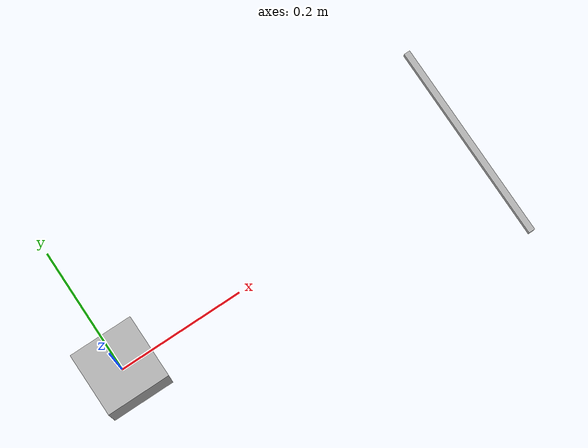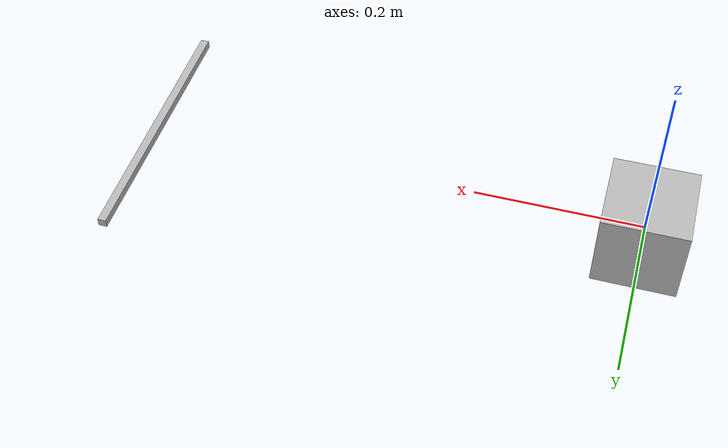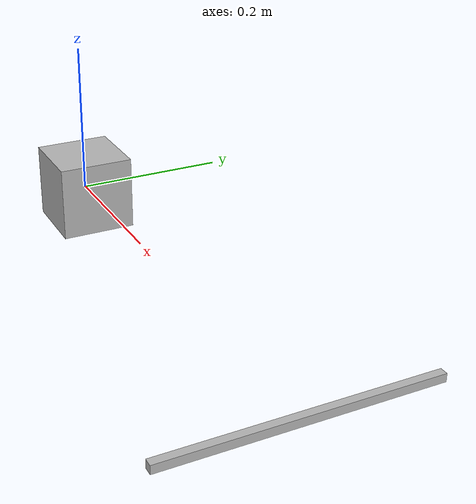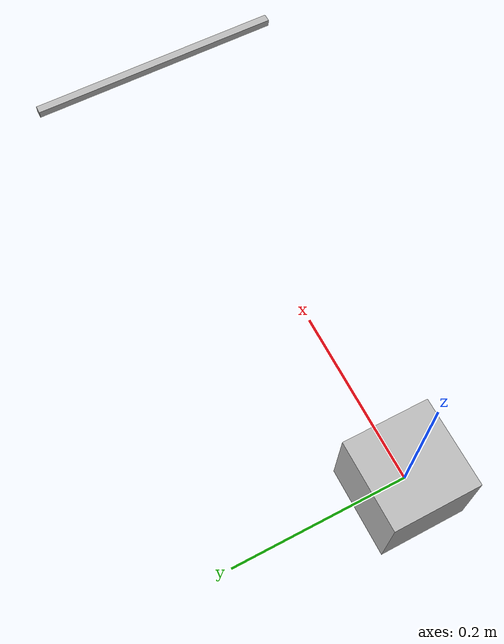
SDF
<?xml version="1.0"?>
<sdf version='1.6'>
  <world name='default'>
    <model name='unit_box'>
      <pose>0.6 0 0 0 0 0</pose>
      <link name='link'>
        <gravity>0</gravity>
        <visual name='visual'>
          <geometry>
            <box>
              <size>0.01 0.32 0.01</size>
            </box>
          </geometry>
        </visual>
      </link>
      <plugin name="random_rotation" filename="librandom_rotation.so">
        <roll>0.2</roll>
        <pitch>0.2</pitch>
        <yaw>3.1416</yaw>
      </plugin>
    </model>
    <light name='user_directional_light_0' type='directional'>
      <pose>0 0 1 0 0 0</pose>
    </light>
    <model name='camera_model'>
      <static>true</static>
      <pose>0 0 0 0 0 0</pose>
      <link name='link'>
        <visual name='visual'>
          <geometry>
            <box>
              <size>0.1 0.1 0.1</size>
            </box>
          </geometry>
        </visual>
        <sensor name='camera1' type='camera'>
          <pose>0 0.03 0 0 0 0</pose>
          <camera>
            <save enabled="true">
              <path>/tmp/camera_left</path>
            </save>
            <image>
              <width>1280</width>
              <height>960</height>
            </image>
            <clip>
              <near>0.1</near>
              <far>100</far>
            </clip>
            <lens>
              <intrinsics>
                <fx>500</fx>
                <fy>500</fy>
                <cx>640</cx>
                <cy>480</cy>
              </intrinsics>
            </lens>
          </camera>
          <always_on>1</always_on>
          <update_rate>5</update_rate>
        </sensor>
        <sensor name='camera2' type='camera'>
          <pose>0 -0.03 0 0 0 0</pose>
          <camera>
            <save enabled="true">
              <path>/tmp/camera_right</path>
            </save>
            <image>
              <width>1280</width>
              <height>960</height>
            </image>
            <clip>
              <near>0.1</near>
              <far>100</far>
            </clip>
            <lens>
              <intrinsics>
                <fx>500</fx>
                <fy>500</fy>
                <cx>640</cx>
                <cy>480</cy>
              </intrinsics>
            </lens>
          </camera>
          <always_on>1</always_on>
          <update_rate>5</update_rate>
        </sensor>
      </link>
    </model>
  </world>
</sdf>
